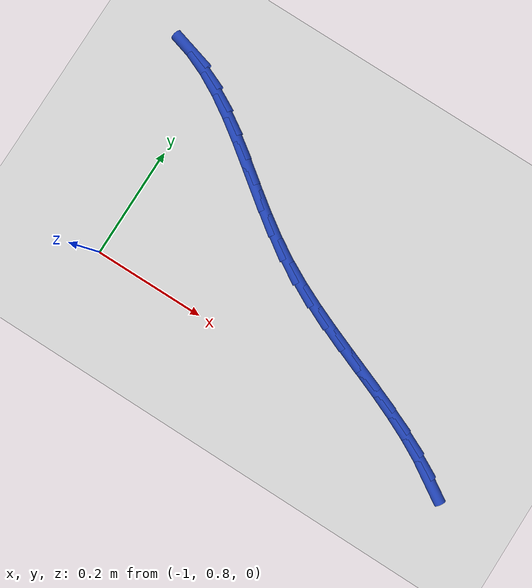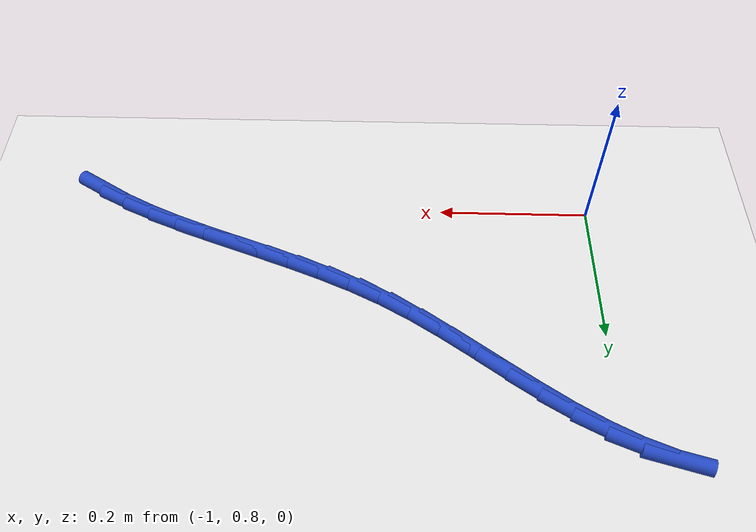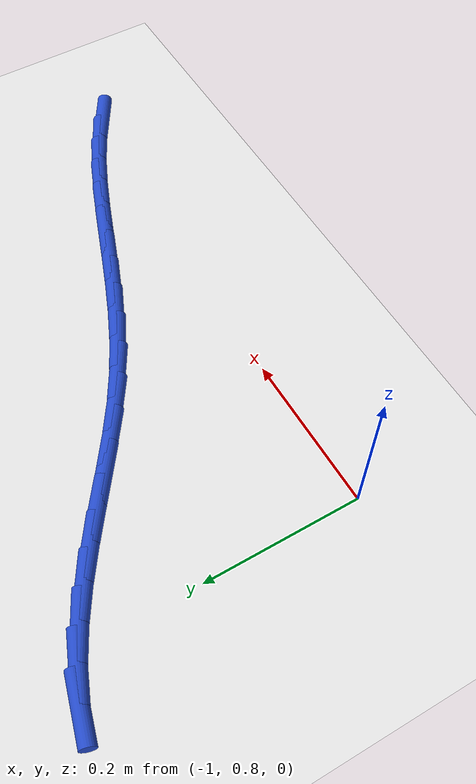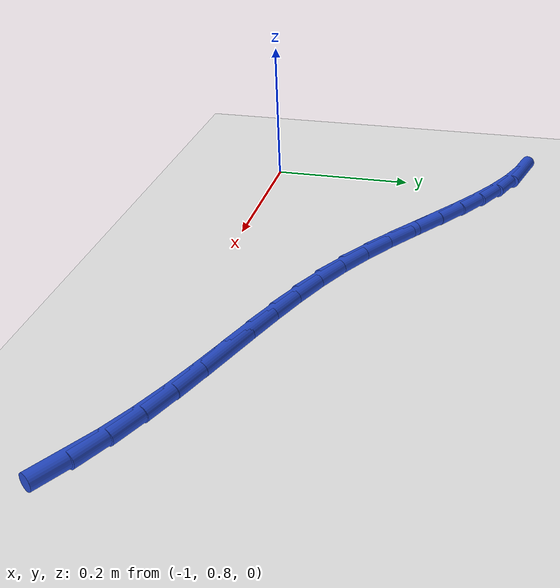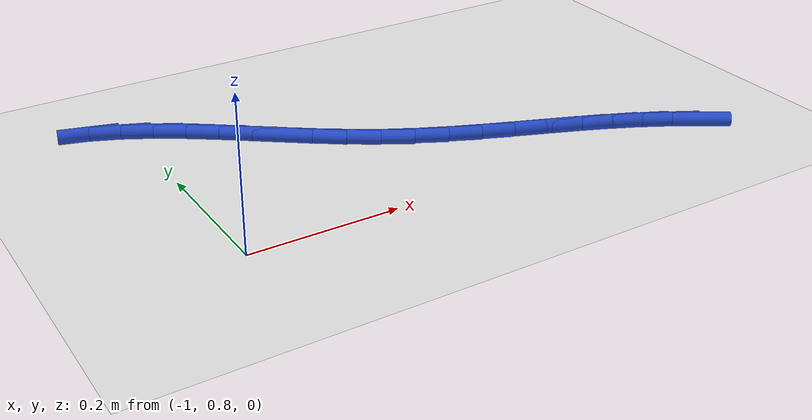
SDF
<sdf version="1.6">
 <world name="default">
  <model name="ground_plane">
   <static>1</static>
   <link name="link">
    <collision name="collision">
     <geometry><plane><normal>0 0 1</normal><size>100 100</size></plane></geometry>
     <surface><friction><ode><mu>100</mu><mu2>50</mu2></ode></friction></surface>
    </collision>
    <visual name="visual">
     <cast_shadows>0</cast_shadows>
     <geometry><plane><normal>0 0 1</normal><size>100 100</size></plane></geometry>
     <material>
      <script><uri>file://media/materials/scripts/gazebo.material</uri><name>Gazebo/WhiteGlow</name></script>
     </material>
    </visual>
   </link>
  </model>
  <model name="line">
   <link name="link_20">
    <pose>-0.33081787241467375 0.7759604354074059 0.01 0 1.57 -0.5612017702716076</pose>
    <collision name="collision">
     <geometry><cylinder><radius>0.01</radius><length>0.08</length></cylinder></geometry>
    </collision>
    <visual name="visual">
     <material>
      <script><name>Gazebo/Blue</name><uri>file://media/materials/scripts/gazebo.material</uri></script>
     </material>
     <geometry><cylinder><radius>0.01</radius><length>0.08</length></cylinder></geometry>
    </visual>
   </link>
   <link name="link_21">
    <pose>-0.3659238832648375 0.7980289494827505 0.01 0 1.57 -0.4899811874783341</pose>
    <collision name="collision">
     <geometry><cylinder><radius>0.01</radius><length>0.08</length></cylinder></geometry>
    </collision>
    <visual name="visual">
     <material>
      <script><name>Gazebo/Blue</name><uri>file://media/materials/scripts/gazebo.material</uri></script>
     </material>
     <geometry><cylinder><radius>0.01</radius><length>0.08</length></cylinder></geometry>
    </visual>
   </link>
   <link name="link_22">
    <pose>-0.40284795887862057 0.8177229214889843 0.01 0 1.57 -0.43562341742948246</pose>
    <collision name="collision">
     <geometry><cylinder><radius>0.01</radius><length>0.08</length></cylinder></geometry>
    </collision>
    <visual name="visual">
     <material>
      <script><name>Gazebo/Blue</name><uri>file://media/materials/scripts/gazebo.material</uri></script>
     </material>
     <geometry><cylinder><radius>0.01</radius><length>0.08</length></cylinder></geometry>
    </visual>
   </link>
   <link name="link_23">
    <pose>-0.4412538098761629 0.8355987290956232 0.01 0 1.57 -0.3976808472469449</pose>
    <collision name="collision">
     <geometry><cylinder><radius>0.01</radius><length>0.08</length></cylinder></geometry>
    </collision>
    <visual name="visual">
     <material>
      <script><name>Gazebo/Blue</name><uri>file://media/materials/scripts/gazebo.material</uri></script>
     </material>
     <geometry><cylinder><radius>0.01</radius><length>0.08</length></cylinder></geometry>
    </visual>
   </link>
   <link name="link_24">
    <pose>-0.48080514687760456 0.8522127499721841 0.01 0 1.57 -0.37546400602719515</pose>
    <collision name="collision">
     <geometry><cylinder><radius>0.01</radius><length>0.08</length></cylinder></geometry>
    </collision>
    <visual name="visual">
     <material>
      <script><name>Gazebo/Blue</name><uri>file://media/materials/scripts/gazebo.material</uri></script>
     </material>
     <geometry><cylinder><radius>0.01</radius><length>0.08</length></cylinder></geometry>
    </visual>
   </link>
   <link name="link_25">
    <pose>-0.5211656805030855 0.8681213617881839 0.01 0 1.57 -0.36833410776010544</pose>
    <collision name="collision">
     <geometry><cylinder><radius>0.01</radius><length>0.08</length></cylinder></geometry>
    </collision>
    <visual name="visual">
     <material>
      <script><name>Gazebo/Blue</name><uri>file://media/materials/scripts/gazebo.material</uri></script>
     </material>
     <geometry><cylinder><radius>0.01</radius><length>0.08</length></cylinder></geometry>
    </visual>
   </link>
   <link name="link_26">
    <pose>-0.5619991213727461 0.8838809422131386 0.01 0 1.57 -0.37584554307478846</pose>
    <collision name="collision">
     <geometry><cylinder><radius>0.01</radius><length>0.08</length></cylinder></geometry>
    </collision>
    <visual name="visual">
     <material>
      <script><name>Gazebo/Blue</name><uri>file://media/materials/scripts/gazebo.material</uri></script>
     </material>
     <geometry><cylinder><radius>0.01</radius><length>0.08</length></cylinder></geometry>
    </visual>
   </link>
   <link name="link_27">
    <pose>-0.6029691801067263 0.9000478689165652 0.01 0 1.57 -0.3977757655474436</pose>
    <collision name="collision">
     <geometry><cylinder><radius>0.01</radius><length>0.08</length></cylinder></geometry>
    </collision>
    <visual name="visual">
     <material>
      <script><name>Gazebo/Blue</name><uri>file://media/materials/scripts/gazebo.material</uri></script>
     </material>
     <geometry><cylinder><radius>0.01</radius><length>0.08</length></cylinder></geometry>
    </visual>
   </link>
   <link name="link_28">
    <pose>-0.6437395673251659 0.9171785195679796 0.01 0 1.57 -0.43406651591498496</pose>
    <collision name="collision">
     <geometry><cylinder><radius>0.01</radius><length>0.08</length></cylinder></geometry>
    </collision>
    <visual name="visual">
     <material>
      <script><name>Gazebo/Blue</name><uri>file://media/materials/scripts/gazebo.material</uri></script>
     </material>
     <geometry><cylinder><radius>0.01</radius><length>0.08</length></cylinder></geometry>
    </visual>
   </link>
   <link name="link_29">
    <pose>-0.6839739936482054 0.9358292718368992 0.01 0 1.57 -0.48468275375835856</pose>
    <collision name="collision">
     <geometry><cylinder><radius>0.01</radius><length>0.08</length></cylinder></geometry>
    </collision>
    <visual name="visual">
     <material>
      <script><name>Gazebo/Blue</name><uri>file://media/materials/scripts/gazebo.material</uri></script>
     </material>
     <geometry><cylinder><radius>0.01</radius><length>0.08</length></cylinder></geometry>
    </visual>
   </link>
   <link name="link_30">
    <pose>-0.7233361696959841 0.9565565033928393 0.01 0 1.57 -0.5469721512562417</pose>
    <collision name="collision">
     <geometry><cylinder><radius>0.01</radius><length>0.08</length></cylinder></geometry>
    </collision>
    <visual name="visual">
     <material>
      <script><name>Gazebo/Blue</name><uri>file://media/materials/scripts/gazebo.material</uri></script>
     </material>
     <geometry><cylinder><radius>0.01</radius><length>0.08</length></cylinder></geometry>
    </visual>
   </link>
   <link name="link_31">
    <pose>-0.7615343112370307 0.9798171436128819 0.01 0 1.57 -0.5996325471452599</pose>
    <collision name="collision">
     <geometry><cylinder><radius>0.01</radius><length>0.08</length></cylinder></geometry>
    </collision>
    <visual name="visual">
     <material>
      <script><name>Gazebo/Blue</name><uri>file://media/materials/scripts/gazebo.material</uri></script>
     </material>
     <geometry><cylinder><radius>0.01</radius><length>0.08</length></cylinder></geometry>
    </visual>
   </link>
   <link name="link_32">
    <pose>-0.7986652449576362 1.0051997573456564 0.01 0 1.57 -0.6323907942733379</pose>
    <collision name="collision">
     <geometry><cylinder><radius>0.01</radius><length>0.08</length></cylinder></geometry>
    </collision>
    <visual name="visual">
     <material>
      <script><name>Gazebo/Blue</name><uri>file://media/materials/scripts/gazebo.material</uri></script>
     </material>
     <geometry><cylinder><radius>0.01</radius><length>0.08</length></cylinder></geometry>
    </visual>
   </link>
   <link name="link_33">
    <pose>-0.8350264224678011 1.0318446061129714 0.01 0 1.57 -0.6457387281941427</pose>
    <collision name="collision">
     <geometry><cylinder><radius>0.01</radius><length>0.08</length></cylinder></geometry>
    </collision>
    <visual name="visual">
     <material>
      <script><name>Gazebo/Blue</name><uri>file://media/materials/scripts/gazebo.material</uri></script>
     </material>
     <geometry><cylinder><radius>0.01</radius><length>0.08</length></cylinder></geometry>
    </visual>
   </link>
   <link name="link_34">
    <pose>-0.870916969366035 1.0588882108514495 0.01 0 1.57 -0.639720575900705</pose>
    <collision name="collision">
     <geometry><cylinder><radius>0.01</radius><length>0.08</length></cylinder></geometry>
    </collision>
    <visual name="visual">
     <material>
      <script><name>Gazebo/Blue</name><uri>file://media/materials/scripts/gazebo.material</uri></script>
     </material>
     <geometry><cylinder><radius>0.01</radius><length>0.08</length></cylinder></geometry>
    </visual>
   </link>
   <link name="link_35">
    <pose>-0.9066360112508475 1.0854670924977126 0.01 0 1.57 -0.6136782997817464</pose>
    <collision name="collision">
     <geometry><cylinder><radius>0.01</radius><length>0.08</length></cylinder></geometry>
    </collision>
    <visual name="visual">
     <material>
      <script><name>Gazebo/Blue</name><uri>file://media/materials/scripts/gazebo.material</uri></script>
     </material>
     <geometry><cylinder><radius>0.01</radius><length>0.08</length></cylinder></geometry>
    </visual>
   </link>
   <link name="link_36">
    <pose>-0.9424826737207479 1.110717771988383 0.01 0 1.57 -0.5662565731893778</pose>
    <collision name="collision">
     <geometry><cylinder><radius>0.01</radius><length>0.08</length></cylinder></geometry>
    </collision>
    <visual name="visual">
     <material>
      <script><name>Gazebo/Blue</name><uri>file://media/materials/scripts/gazebo.material</uri></script>
     </material>
     <geometry><cylinder><radius>0.01</radius><length>0.08</length></cylinder></geometry>
    </visual>
   </link>
   <link name="link_37">
    <pose>-0.9787560823742463 1.1337767702600832 0.01 0 1.57 -0.49564008075611804</pose>
    <collision name="collision">
     <geometry><cylinder><radius>0.01</radius><length>0.08</length></cylinder></geometry>
    </collision>
    <visual name="visual">
     <material>
      <script><name>Gazebo/Blue</name><uri>file://media/materials/scripts/gazebo.material</uri></script>
     </material>
     <geometry><cylinder><radius>0.01</radius><length>0.08</length></cylinder></geometry>
    </visual>
   </link>
   <link name="link_38">
    <pose>-1.0157553628098521 1.1537806082494357 0.01 0 1.57 -0.4001961369150769</pose>
    <collision name="collision">
     <geometry><cylinder><radius>0.01</radius><length>0.08</length></cylinder></geometry>
    </collision>
    <visual name="visual">
     <material>
      <script><name>Gazebo/Blue</name><uri>file://media/materials/scripts/gazebo.material</uri></script>
     </material>
     <geometry><cylinder><radius>0.01</radius><length>0.08</length></cylinder></geometry>
    </visual>
   </link>
   <link name="link_39">
    <pose>-1.0537796406260744 1.1698658068930623 0.01 0 1.57 -0.27972481229337687</pose>
    <collision name="collision">
     <geometry><cylinder><radius>0.01</radius><length>0.08</length></cylinder></geometry>
    </collision>
    <visual name="visual">
     <material>
      <script><name>Gazebo/Blue</name><uri>file://media/materials/scripts/gazebo.material</uri></script>
     </material>
     <geometry><cylinder><radius>0.01</radius><length>0.08</length></cylinder></geometry>
    </visual>
   </link>
  </model>
 </world>
</sdf>
